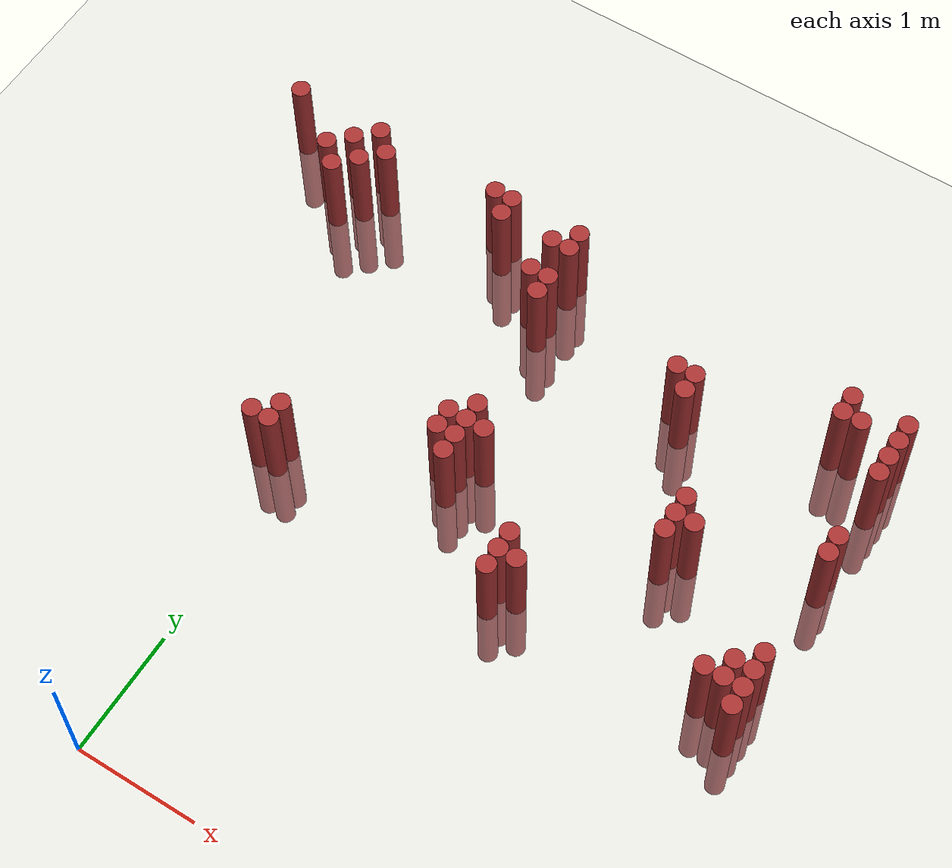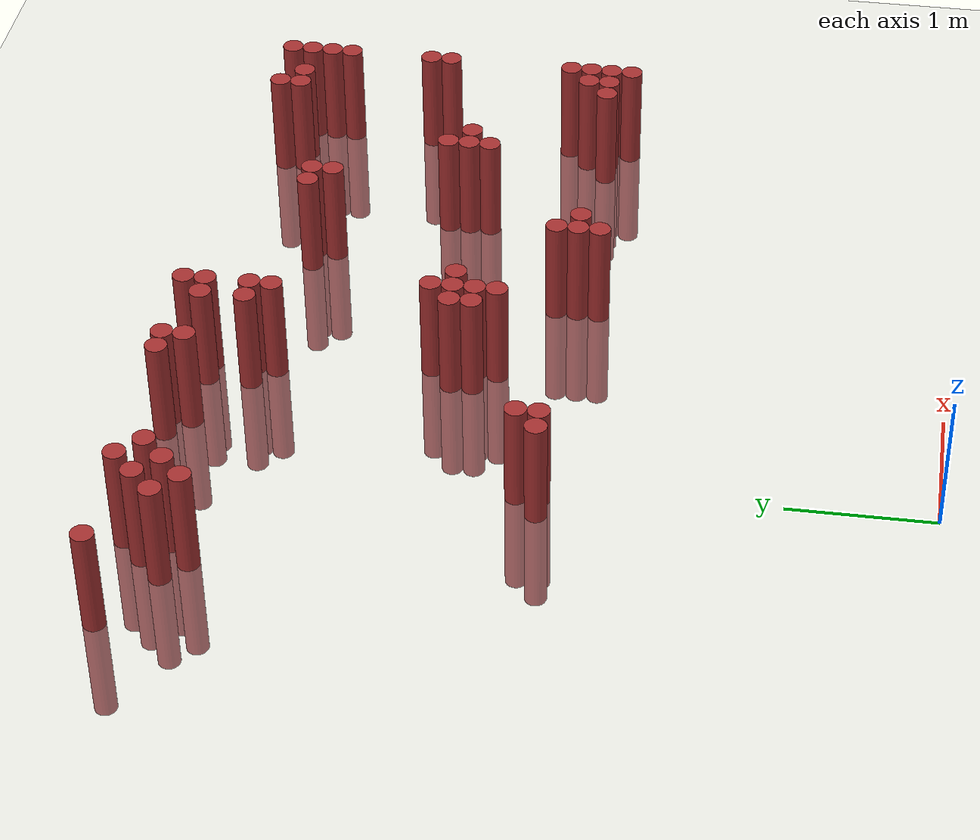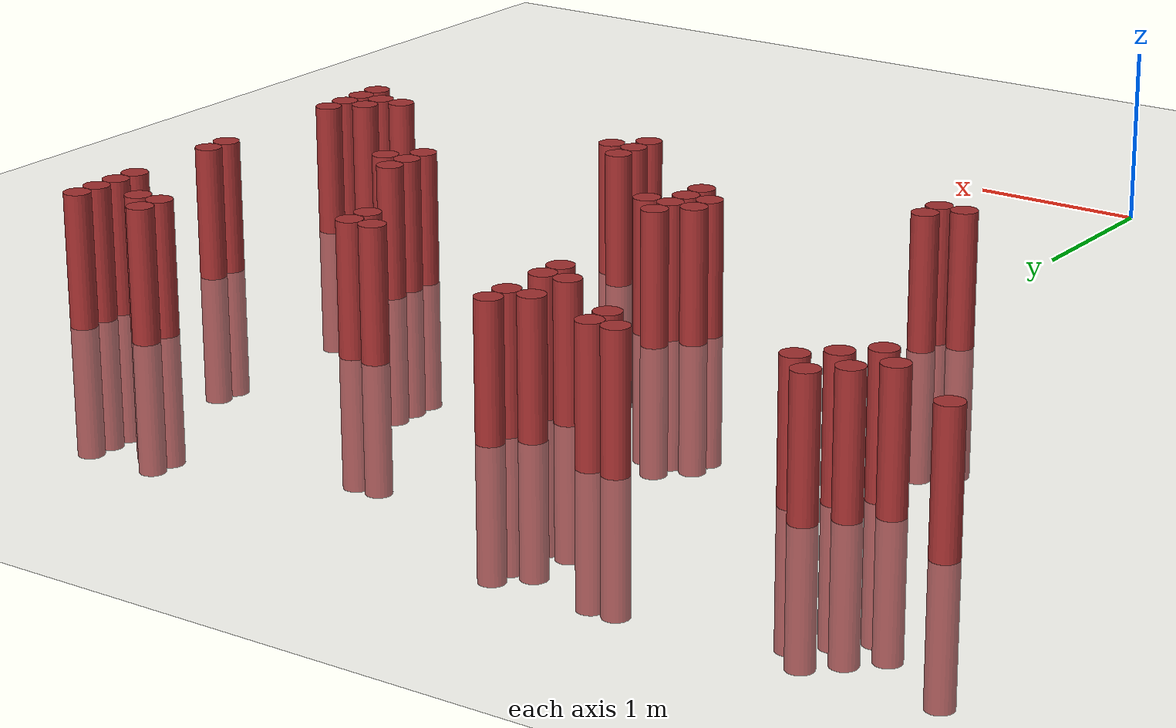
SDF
<sdf version="1.6">
 <world name="default">
  <model name="ground_plane">
   <static>1</static>
   <link name="link">
    <collision name="collision">
     <geometry><plane><normal>0 0 1</normal><size>100 100</size></plane></geometry>
     <surface><friction><ode><mu>100</mu><mu2>50</mu2></ode></friction></surface>
    </collision>
    <visual name="visual">
     <cast_shadows>0</cast_shadows>
     <geometry><plane><normal>0 0 1</normal><size>100 100</size></plane></geometry>
     <material>
      <script><uri>file://media/materials/scripts/gazebo.material</uri><name>Gazebo/Grey</name></script>
     </material>
    </visual>
   </link>
  </model>
  <model name="unit_cylinder_307">
   <static>1</static>
   <pose>-1.625000 5.125000 0.000000 0.000000 0.000000 0.000000</pose>
   <link name="link">
    <inertial>
     <mass>1</mass>
     <inertia><ixx>0.145833</ixx><ixy>0</ixy><ixz>0</ixz><iyy>0.145833</iyy><iyz>0</iyz><izz>0.125</izz></inertia>
    </inertial>
    <collision name="collision">
     <geometry><cylinder><radius>0.075000</radius><length>1.5</length></cylinder></geometry>
    </collision>
    <visual name="visual">
     <geometry><cylinder><radius>0.075000</radius><length>1.5</length></cylinder></geometry>
     <material>
      <ambient>0.648000 0.192000 0.192000 1</ambient>
      <diffuse>0.648000 0.192000 0.192000 1</diffuse>
     </material>
     <material>
      <script><name>Gazebo/Grey</name><uri>file://media/materials/scripts/gazebo.material</uri></script>
     </material>
    </visual>
   </link>
  </model>
  <model name="unit_cylinder_311">
   <static>1</static>
   <pose>-1.175000 4.825000 0.000000 0.000000 0.000000 0.000000</pose>
   <link name="link">
    <inertial>
     <mass>1</mass>
     <inertia><ixx>0.145833</ixx><ixy>0</ixy><ixz>0</ixz><iyy>0.145833</iyy><iyz>0</iyz><izz>0.125</izz></inertia>
    </inertial>
    <collision name="collision">
     <geometry><cylinder><radius>0.075000</radius><length>1.5</length></cylinder></geometry>
    </collision>
    <visual name="visual">
     <geometry><cylinder><radius>0.075000</radius><length>1.5</length></cylinder></geometry>
     <material>
      <ambient>0.648000 0.192000 0.192000 1</ambient>
      <diffuse>0.648000 0.192000 0.192000 1</diffuse>
     </material>
     <material>
      <script><name>Gazebo/Grey</name><uri>file://media/materials/scripts/gazebo.material</uri></script>
     </material>
    </visual>
   </link>
  </model>
  <model name="unit_cylinder_313">
   <static>1</static>
   <pose>-1.025000 4.675000 0.000000 0.000000 0.000000 0.000000</pose>
   <link name="link">
    <inertial>
     <mass>1</mass>
     <inertia><ixx>0.145833</ixx><ixy>0</ixy><ixz>0</ixz><iyy>0.145833</iyy><iyz>0</iyz><izz>0.125</izz></inertia>
    </inertial>
    <collision name="collision">
     <geometry><cylinder><radius>0.075000</radius><length>1.5</length></cylinder></geometry>
    </collision>
    <visual name="visual">
     <geometry><cylinder><radius>0.075000</radius><length>1.5</length></cylinder></geometry>
     <material>
      <ambient>0.648000 0.192000 0.192000 1</ambient>
      <diffuse>0.648000 0.192000 0.192000 1</diffuse>
     </material>
     <material>
      <script><name>Gazebo/Grey</name><uri>file://media/materials/scripts/gazebo.material</uri></script>
     </material>
    </visual>
   </link>
  </model>
  <model name="unit_cylinder_314">
   <static>1</static>
   <pose>-1.025000 4.975000 0.000000 0.000000 0.000000 0.000000</pose>
   <link name="link">
    <inertial>
     <mass>1</mass>
     <inertia><ixx>0.145833</ixx><ixy>0</ixy><ixz>0</ixz><iyy>0.145833</iyy><iyz>0</iyz><izz>0.125</izz></inertia>
    </inertial>
    <collision name="collision">
     <geometry><cylinder><radius>0.075000</radius><length>1.5</length></cylinder></geometry>
    </collision>
    <visual name="visual">
     <geometry><cylinder><radius>0.075000</radius><length>1.5</length></cylinder></geometry>
     <material>
      <ambient>0.648000 0.192000 0.192000 1</ambient>
      <diffuse>0.648000 0.192000 0.192000 1</diffuse>
     </material>
     <material>
      <script><name>Gazebo/Grey</name><uri>file://media/materials/scripts/gazebo.material</uri></script>
     </material>
    </visual>
   </link>
  </model>
  <model name="unit_cylinder_315">
   <static>1</static>
   <pose>-0.875000 4.825000 0.000000 0.000000 0.000000 0.000000</pose>
   <link name="link">
    <inertial>
     <mass>1</mass>
     <inertia><ixx>0.145833</ixx><ixy>0</ixy><ixz>0</ixz><iyy>0.145833</iyy><iyz>0</iyz><izz>0.125</izz></inertia>
    </inertial>
    <collision name="collision">
     <geometry><cylinder><radius>0.075000</radius><length>1.5</length></cylinder></geometry>
    </collision>
    <visual name="visual">
     <geometry><cylinder><radius>0.075000</radius><length>1.5</length></cylinder></geometry>
     <material>
      <ambient>0.648000 0.192000 0.192000 1</ambient>
      <diffuse>0.648000 0.192000 0.192000 1</diffuse>
     </material>
     <material>
      <script><name>Gazebo/Grey</name><uri>file://media/materials/scripts/gazebo.material</uri></script>
     </material>
    </visual>
   </link>
  </model>
  <model name="unit_cylinder_316">
   <static>1</static>
   <pose>-0.875000 5.125000 0.000000 0.000000 0.000000 0.000000</pose>
   <link name="link">
    <inertial>
     <mass>1</mass>
     <inertia><ixx>0.145833</ixx><ixy>0</ixy><ixz>0</ixz><iyy>0.145833</iyy><iyz>0</iyz><izz>0.125</izz></inertia>
    </inertial>
    <collision name="collision">
     <geometry><cylinder><radius>0.075000</radius><length>1.5</length></cylinder></geometry>
    </collision>
    <visual name="visual">
     <geometry><cylinder><radius>0.075000</radius><length>1.5</length></cylinder></geometry>
     <material>
      <ambient>0.648000 0.192000 0.192000 1</ambient>
      <diffuse>0.648000 0.192000 0.192000 1</diffuse>
     </material>
     <material>
      <script><name>Gazebo/Grey</name><uri>file://media/materials/scripts/gazebo.material</uri></script>
     </material>
    </visual>
   </link>
  </model>
  <model name="unit_cylinder_317">
   <static>1</static>
   <pose>-0.725000 4.975000 0.000000 0.000000 0.000000 0.000000</pose>
   <link name="link">
    <inertial>
     <mass>1</mass>
     <inertia><ixx>0.145833</ixx><ixy>0</ixy><ixz>0</ixz><iyy>0.145833</iyy><iyz>0</iyz><izz>0.125</izz></inertia>
    </inertial>
    <collision name="collision">
     <geometry><cylinder><radius>0.075000</radius><length>1.5</length></cylinder></geometry>
    </collision>
    <visual name="visual">
     <geometry><cylinder><radius>0.075000</radius><length>1.5</length></cylinder></geometry>
     <material>
      <ambient>0.648000 0.192000 0.192000 1</ambient>
      <diffuse>0.648000 0.192000 0.192000 1</diffuse>
     </material>
     <material>
      <script><name>Gazebo/Grey</name><uri>file://media/materials/scripts/gazebo.material</uri></script>
     </material>
    </visual>
   </link>
  </model>
  <model name="unit_cylinder_318">
   <static>1</static>
   <pose>-0.275000 2.575000 0.000000 0.000000 0.000000 0.000000</pose>
   <link name="link">
    <inertial>
     <mass>1</mass>
     <inertia><ixx>0.145833</ixx><ixy>0</ixy><ixz>0</ixz><iyy>0.145833</iyy><iyz>0</iyz><izz>0.125</izz></inertia>
    </inertial>
    <collision name="collision">
     <geometry><cylinder><radius>0.075000</radius><length>1.5</length></cylinder></geometry>
    </collision>
    <visual name="visual">
     <geometry><cylinder><radius>0.075000</radius><length>1.5</length></cylinder></geometry>
     <material>
      <ambient>0.648000 0.192000 0.192000 1</ambient>
      <diffuse>0.648000 0.192000 0.192000 1</diffuse>
     </material>
     <material>
      <script><name>Gazebo/Grey</name><uri>file://media/materials/scripts/gazebo.material</uri></script>
     </material>
    </visual>
   </link>
  </model>
  <model name="unit_cylinder_319">
   <static>1</static>
   <pose>-0.125000 2.575000 0.000000 0.000000 0.000000 0.000000</pose>
   <link name="link">
    <inertial>
     <mass>1</mass>
     <inertia><ixx>0.145833</ixx><ixy>0</ixy><ixz>0</ixz><iyy>0.145833</iyy><iyz>0</iyz><izz>0.125</izz></inertia>
    </inertial>
    <collision name="collision">
     <geometry><cylinder><radius>0.075000</radius><length>1.5</length></cylinder></geometry>
    </collision>
    <visual name="visual">
     <geometry><cylinder><radius>0.075000</radius><length>1.5</length></cylinder></geometry>
     <material>
      <ambient>0.648000 0.192000 0.192000 1</ambient>
      <diffuse>0.648000 0.192000 0.192000 1</diffuse>
     </material>
     <material>
      <script><name>Gazebo/Grey</name><uri>file://media/materials/scripts/gazebo.material</uri></script>
     </material>
    </visual>
   </link>
  </model>
  <model name="unit_cylinder_320">
   <static>1</static>
   <pose>-0.125000 2.725000 0.000000 0.000000 0.000000 0.000000</pose>
   <link name="link">
    <inertial>
     <mass>1</mass>
     <inertia><ixx>0.145833</ixx><ixy>0</ixy><ixz>0</ixz><iyy>0.145833</iyy><iyz>0</iyz><izz>0.125</izz></inertia>
    </inertial>
    <collision name="collision">
     <geometry><cylinder><radius>0.075000</radius><length>1.5</length></cylinder></geometry>
    </collision>
    <visual name="visual">
     <geometry><cylinder><radius>0.075000</radius><length>1.5</length></cylinder></geometry>
     <material>
      <ambient>0.648000 0.192000 0.192000 1</ambient>
      <diffuse>0.648000 0.192000 0.192000 1</diffuse>
     </material>
     <material>
      <script><name>Gazebo/Grey</name><uri>file://media/materials/scripts/gazebo.material</uri></script>
     </material>
    </visual>
   </link>
  </model>
  <model name="unit_cylinder_325">
   <static>1</static>
   <pose>0.175000 5.125000 0.000000 0.000000 0.000000 0.000000</pose>
   <link name="link">
    <inertial>
     <mass>1</mass>
     <inertia><ixx>0.145833</ixx><ixy>0</ixy><ixz>0</ixz><iyy>0.145833</iyy><iyz>0</iyz><izz>0.125</izz></inertia>
    </inertial>
    <collision name="collision">
     <geometry><cylinder><radius>0.075000</radius><length>1.5</length></cylinder></geometry>
    </collision>
    <visual name="visual">
     <geometry><cylinder><radius>0.075000</radius><length>1.5</length></cylinder></geometry>
     <material>
      <ambient>0.648000 0.192000 0.192000 1</ambient>
      <diffuse>0.648000 0.192000 0.192000 1</diffuse>
     </material>
     <material>
      <script><name>Gazebo/Grey</name><uri>file://media/materials/scripts/gazebo.material</uri></script>
     </material>
    </visual>
   </link>
  </model>
  <model name="unit_cylinder_331">
   <static>1</static>
   <pose>0.325000 4.975000 0.000000 0.000000 0.000000 0.000000</pose>
   <link name="link">
    <inertial>
     <mass>1</mass>
     <inertia><ixx>0.145833</ixx><ixy>0</ixy><ixz>0</ixz><iyy>0.145833</iyy><iyz>0</iyz><izz>0.125</izz></inertia>
    </inertial>
    <collision name="collision">
     <geometry><cylinder><radius>0.075000</radius><length>1.5</length></cylinder></geometry>
    </collision>
    <visual name="visual">
     <geometry><cylinder><radius>0.075000</radius><length>1.5</length></cylinder></geometry>
     <material>
      <ambient>0.648000 0.192000 0.192000 1</ambient>
      <diffuse>0.648000 0.192000 0.192000 1</diffuse>
     </material>
     <material>
      <script><name>Gazebo/Grey</name><uri>file://media/materials/scripts/gazebo.material</uri></script>
     </material>
    </visual>
   </link>
  </model>
  <model name="unit_cylinder_332">
   <static>1</static>
   <pose>0.325000 5.125000 0.000000 0.000000 0.000000 0.000000</pose>
   <link name="link">
    <inertial>
     <mass>1</mass>
     <inertia><ixx>0.145833</ixx><ixy>0</ixy><ixz>0</ixz><iyy>0.145833</iyy><iyz>0</iyz><izz>0.125</izz></inertia>
    </inertial>
    <collision name="collision">
     <geometry><cylinder><radius>0.075000</radius><length>1.5</length></cylinder></geometry>
    </collision>
    <visual name="visual">
     <geometry><cylinder><radius>0.075000</radius><length>1.5</length></cylinder></geometry>
     <material>
      <ambient>0.648000 0.192000 0.192000 1</ambient>
      <diffuse>0.648000 0.192000 0.192000 1</diffuse>
     </material>
     <material>
      <script><name>Gazebo/Grey</name><uri>file://media/materials/scripts/gazebo.material</uri></script>
     </material>
    </visual>
   </link>
  </model>
  <model name="unit_cylinder_340">
   <static>1</static>
   <pose>0.775000 4.675000 0.000000 0.000000 0.000000 0.000000</pose>
   <link name="link">
    <inertial>
     <mass>1</mass>
     <inertia><ixx>0.145833</ixx><ixy>0</ixy><ixz>0</ixz><iyy>0.145833</iyy><iyz>0</iyz><izz>0.125</izz></inertia>
    </inertial>
    <collision name="collision">
     <geometry><cylinder><radius>0.075000</radius><length>1.5</length></cylinder></geometry>
    </collision>
    <visual name="visual">
     <geometry><cylinder><radius>0.075000</radius><length>1.5</length></cylinder></geometry>
     <material>
      <ambient>0.648000 0.192000 0.192000 1</ambient>
      <diffuse>0.648000 0.192000 0.192000 1</diffuse>
     </material>
     <material>
      <script><name>Gazebo/Grey</name><uri>file://media/materials/scripts/gazebo.material</uri></script>
     </material>
    </visual>
   </link>
  </model>
  <model name="unit_cylinder_341">
   <static>1</static>
   <pose>0.775000 4.975000 0.000000 0.000000 0.000000 0.000000</pose>
   <link name="link">
    <inertial>
     <mass>1</mass>
     <inertia><ixx>0.145833</ixx><ixy>0</ixy><ixz>0</ixz><iyy>0.145833</iyy><iyz>0</iyz><izz>0.125</izz></inertia>
    </inertial>
    <collision name="collision">
     <geometry><cylinder><radius>0.075000</radius><length>1.5</length></cylinder></geometry>
    </collision>
    <visual name="visual">
     <geometry><cylinder><radius>0.075000</radius><length>1.5</length></cylinder></geometry>
     <material>
      <ambient>0.648000 0.192000 0.192000 1</ambient>
      <diffuse>0.648000 0.192000 0.192000 1</diffuse>
     </material>
     <material>
      <script><name>Gazebo/Grey</name><uri>file://media/materials/scripts/gazebo.material</uri></script>
     </material>
    </visual>
   </link>
  </model>
  <model name="unit_cylinder_342">
   <static>1</static>
   <pose>0.925000 3.175000 0.000000 0.000000 0.000000 0.000000</pose>
   <link name="link">
    <inertial>
     <mass>1</mass>
     <inertia><ixx>0.145833</ixx><ixy>0</ixy><ixz>0</ixz><iyy>0.145833</iyy><iyz>0</iyz><izz>0.125</izz></inertia>
    </inertial>
    <collision name="collision">
     <geometry><cylinder><radius>0.075000</radius><length>1.5</length></cylinder></geometry>
    </collision>
    <visual name="visual">
     <geometry><cylinder><radius>0.075000</radius><length>1.5</length></cylinder></geometry>
     <material>
      <ambient>0.648000 0.192000 0.192000 1</ambient>
      <diffuse>0.648000 0.192000 0.192000 1</diffuse>
     </material>
     <material>
      <script><name>Gazebo/Grey</name><uri>file://media/materials/scripts/gazebo.material</uri></script>
     </material>
    </visual>
   </link>
  </model>
  <model name="unit_cylinder_343">
   <static>1</static>
   <pose>0.925000 3.325000 0.000000 0.000000 0.000000 0.000000</pose>
   <link name="link">
    <inertial>
     <mass>1</mass>
     <inertia><ixx>0.145833</ixx><ixy>0</ixy><ixz>0</ixz><iyy>0.145833</iyy><iyz>0</iyz><izz>0.125</izz></inertia>
    </inertial>
    <collision name="collision">
     <geometry><cylinder><radius>0.075000</radius><length>1.5</length></cylinder></geometry>
    </collision>
    <visual name="visual">
     <geometry><cylinder><radius>0.075000</radius><length>1.5</length></cylinder></geometry>
     <material>
      <ambient>0.648000 0.192000 0.192000 1</ambient>
      <diffuse>0.648000 0.192000 0.192000 1</diffuse>
     </material>
     <material>
      <script><name>Gazebo/Grey</name><uri>file://media/materials/scripts/gazebo.material</uri></script>
     </material>
    </visual>
   </link>
  </model>
  <model name="unit_cylinder_344">
   <static>1</static>
   <pose>0.925000 4.525000 0.000000 0.000000 0.000000 0.000000</pose>
   <link name="link">
    <inertial>
     <mass>1</mass>
     <inertia><ixx>0.145833</ixx><ixy>0</ixy><ixz>0</ixz><iyy>0.145833</iyy><iyz>0</iyz><izz>0.125</izz></inertia>
    </inertial>
    <collision name="collision">
     <geometry><cylinder><radius>0.075000</radius><length>1.5</length></cylinder></geometry>
    </collision>
    <visual name="visual">
     <geometry><cylinder><radius>0.075000</radius><length>1.5</length></cylinder></geometry>
     <material>
      <ambient>0.648000 0.192000 0.192000 1</ambient>
      <diffuse>0.648000 0.192000 0.192000 1</diffuse>
     </material>
     <material>
      <script><name>Gazebo/Grey</name><uri>file://media/materials/scripts/gazebo.material</uri></script>
     </material>
    </visual>
   </link>
  </model>
  <model name="unit_cylinder_345">
   <static>1</static>
   <pose>0.925000 4.675000 0.000000 0.000000 0.000000 0.000000</pose>
   <link name="link">
    <inertial>
     <mass>1</mass>
     <inertia><ixx>0.145833</ixx><ixy>0</ixy><ixz>0</ixz><iyy>0.145833</iyy><iyz>0</iyz><izz>0.125</izz></inertia>
    </inertial>
    <collision name="collision">
     <geometry><cylinder><radius>0.075000</radius><length>1.5</length></cylinder></geometry>
    </collision>
    <visual name="visual">
     <geometry><cylinder><radius>0.075000</radius><length>1.5</length></cylinder></geometry>
     <material>
      <ambient>0.648000 0.192000 0.192000 1</ambient>
      <diffuse>0.648000 0.192000 0.192000 1</diffuse>
     </material>
     <material>
      <script><name>Gazebo/Grey</name><uri>file://media/materials/scripts/gazebo.material</uri></script>
     </material>
    </visual>
   </link>
  </model>
  <model name="unit_cylinder_346">
   <static>1</static>
   <pose>0.925000 4.975000 0.000000 0.000000 0.000000 0.000000</pose>
   <link name="link">
    <inertial>
     <mass>1</mass>
     <inertia><ixx>0.145833</ixx><ixy>0</ixy><ixz>0</ixz><iyy>0.145833</iyy><iyz>0</iyz><izz>0.125</izz></inertia>
    </inertial>
    <collision name="collision">
     <geometry><cylinder><radius>0.075000</radius><length>1.5</length></cylinder></geometry>
    </collision>
    <visual name="visual">
     <geometry><cylinder><radius>0.075000</radius><length>1.5</length></cylinder></geometry>
     <material>
      <ambient>0.648000 0.192000 0.192000 1</ambient>
      <diffuse>0.648000 0.192000 0.192000 1</diffuse>
     </material>
     <material>
      <script><name>Gazebo/Grey</name><uri>file://media/materials/scripts/gazebo.material</uri></script>
     </material>
    </visual>
   </link>
  </model>
  <model name="unit_cylinder_347">
   <static>1</static>
   <pose>0.925000 5.125000 0.000000 0.000000 0.000000 0.000000</pose>
   <link name="link">
    <inertial>
     <mass>1</mass>
     <inertia><ixx>0.145833</ixx><ixy>0</ixy><ixz>0</ixz><iyy>0.145833</iyy><iyz>0</iyz><izz>0.125</izz></inertia>
    </inertial>
    <collision name="collision">
     <geometry><cylinder><radius>0.075000</radius><length>1.5</length></cylinder></geometry>
    </collision>
    <visual name="visual">
     <geometry><cylinder><radius>0.075000</radius><length>1.5</length></cylinder></geometry>
     <material>
      <ambient>0.648000 0.192000 0.192000 1</ambient>
      <diffuse>0.648000 0.192000 0.192000 1</diffuse>
     </material>
     <material>
      <script><name>Gazebo/Grey</name><uri>file://media/materials/scripts/gazebo.material</uri></script>
     </material>
    </visual>
   </link>
  </model>
  <model name="unit_cylinder_348">
   <static>1</static>
   <pose>1.075000 3.025000 0.000000 0.000000 0.000000 0.000000</pose>
   <link name="link">
    <inertial>
     <mass>1</mass>
     <inertia><ixx>0.145833</ixx><ixy>0</ixy><ixz>0</ixz><iyy>0.145833</iyy><iyz>0</iyz><izz>0.125</izz></inertia>
    </inertial>
    <collision name="collision">
     <geometry><cylinder><radius>0.075000</radius><length>1.5</length></cylinder></geometry>
    </collision>
    <visual name="visual">
     <geometry><cylinder><radius>0.075000</radius><length>1.5</length></cylinder></geometry>
     <material>
      <ambient>0.648000 0.192000 0.192000 1</ambient>
      <diffuse>0.648000 0.192000 0.192000 1</diffuse>
     </material>
     <material>
      <script><name>Gazebo/Grey</name><uri>file://media/materials/scripts/gazebo.material</uri></script>
     </material>
    </visual>
   </link>
  </model>
  <model name="unit_cylinder_349">
   <static>1</static>
   <pose>1.075000 3.175000 0.000000 0.000000 0.000000 0.000000</pose>
   <link name="link">
    <inertial>
     <mass>1</mass>
     <inertia><ixx>0.145833</ixx><ixy>0</ixy><ixz>0</ixz><iyy>0.145833</iyy><iyz>0</iyz><izz>0.125</izz></inertia>
    </inertial>
    <collision name="collision">
     <geometry><cylinder><radius>0.075000</radius><length>1.5</length></cylinder></geometry>
    </collision>
    <visual name="visual">
     <geometry><cylinder><radius>0.075000</radius><length>1.5</length></cylinder></geometry>
     <material>
      <ambient>0.648000 0.192000 0.192000 1</ambient>
      <diffuse>0.648000 0.192000 0.192000 1</diffuse>
     </material>
     <material>
      <script><name>Gazebo/Grey</name><uri>file://media/materials/scripts/gazebo.material</uri></script>
     </material>
    </visual>
   </link>
  </model>
  <model name="unit_cylinder_350">
   <static>1</static>
   <pose>1.075000 3.325000 0.000000 0.000000 0.000000 0.000000</pose>
   <link name="link">
    <inertial>
     <mass>1</mass>
     <inertia><ixx>0.145833</ixx><ixy>0</ixy><ixz>0</ixz><iyy>0.145833</iyy><iyz>0</iyz><izz>0.125</izz></inertia>
    </inertial>
    <collision name="collision">
     <geometry><cylinder><radius>0.075000</radius><length>1.5</length></cylinder></geometry>
    </collision>
    <visual name="visual">
     <geometry><cylinder><radius>0.075000</radius><length>1.5</length></cylinder></geometry>
     <material>
      <ambient>0.648000 0.192000 0.192000 1</ambient>
      <diffuse>0.648000 0.192000 0.192000 1</diffuse>
     </material>
     <material>
      <script><name>Gazebo/Grey</name><uri>file://media/materials/scripts/gazebo.material</uri></script>
     </material>
    </visual>
   </link>
  </model>
  <model name="unit_cylinder_351">
   <static>1</static>
   <pose>1.075000 3.475000 0.000000 0.000000 0.000000 0.000000</pose>
   <link name="link">
    <inertial>
     <mass>1</mass>
     <inertia><ixx>0.145833</ixx><ixy>0</ixy><ixz>0</ixz><iyy>0.145833</iyy><iyz>0</iyz><izz>0.125</izz></inertia>
    </inertial>
    <collision name="collision">
     <geometry><cylinder><radius>0.075000</radius><length>1.5</length></cylinder></geometry>
    </collision>
    <visual name="visual">
     <geometry><cylinder><radius>0.075000</radius><length>1.5</length></cylinder></geometry>
     <material>
      <ambient>0.648000 0.192000 0.192000 1</ambient>
      <diffuse>0.648000 0.192000 0.192000 1</diffuse>
     </material>
     <material>
      <script><name>Gazebo/Grey</name><uri>file://media/materials/scripts/gazebo.material</uri></script>
     </material>
    </visual>
   </link>
  </model>
  <model name="unit_cylinder_352">
   <static>1</static>
   <pose>1.225000 3.325000 0.000000 0.000000 0.000000 0.000000</pose>
   <link name="link">
    <inertial>
     <mass>1</mass>
     <inertia><ixx>0.145833</ixx><ixy>0</ixy><ixz>0</ixz><iyy>0.145833</iyy><iyz>0</iyz><izz>0.125</izz></inertia>
    </inertial>
    <collision name="collision">
     <geometry><cylinder><radius>0.075000</radius><length>1.5</length></cylinder></geometry>
    </collision>
    <visual name="visual">
     <geometry><cylinder><radius>0.075000</radius><length>1.5</length></cylinder></geometry>
     <material>
      <ambient>0.648000 0.192000 0.192000 1</ambient>
      <diffuse>0.648000 0.192000 0.192000 1</diffuse>
     </material>
     <material>
      <script><name>Gazebo/Grey</name><uri>file://media/materials/scripts/gazebo.material</uri></script>
     </material>
    </visual>
   </link>
  </model>
  <model name="unit_cylinder_361">
   <static>1</static>
   <pose>1.825000 2.425000 0.000000 0.000000 0.000000 0.000000</pose>
   <link name="link">
    <inertial>
     <mass>1</mass>
     <inertia><ixx>0.145833</ixx><ixy>0</ixy><ixz>0</ixz><iyy>0.145833</iyy><iyz>0</iyz><izz>0.125</izz></inertia>
    </inertial>
    <collision name="collision">
     <geometry><cylinder><radius>0.075000</radius><length>1.5</length></cylinder></geometry>
    </collision>
    <visual name="visual">
     <geometry><cylinder><radius>0.075000</radius><length>1.5</length></cylinder></geometry>
     <material>
      <ambient>0.648000 0.192000 0.192000 1</ambient>
      <diffuse>0.648000 0.192000 0.192000 1</diffuse>
     </material>
     <material>
      <script><name>Gazebo/Grey</name><uri>file://media/materials/scripts/gazebo.material</uri></script>
     </material>
    </visual>
   </link>
  </model>
  <model name="unit_cylinder_362">
   <static>1</static>
   <pose>1.825000 2.575000 0.000000 0.000000 0.000000 0.000000</pose>
   <link name="link">
    <inertial>
     <mass>1</mass>
     <inertia><ixx>0.145833</ixx><ixy>0</ixy><ixz>0</ixz><iyy>0.145833</iyy><iyz>0</iyz><izz>0.125</izz></inertia>
    </inertial>
    <collision name="collision">
     <geometry><cylinder><radius>0.075000</radius><length>1.5</length></cylinder></geometry>
    </collision>
    <visual name="visual">
     <geometry><cylinder><radius>0.075000</radius><length>1.5</length></cylinder></geometry>
     <material>
      <ambient>0.648000 0.192000 0.192000 1</ambient>
      <diffuse>0.648000 0.192000 0.192000 1</diffuse>
     </material>
     <material>
      <script><name>Gazebo/Grey</name><uri>file://media/materials/scripts/gazebo.material</uri></script>
     </material>
    </visual>
   </link>
  </model>
  <model name="unit_cylinder_363">
   <static>1</static>
   <pose>1.825000 2.725000 0.000000 0.000000 0.000000 0.000000</pose>
   <link name="link">
    <inertial>
     <mass>1</mass>
     <inertia><ixx>0.145833</ixx><ixy>0</ixy><ixz>0</ixz><iyy>0.145833</iyy><iyz>0</iyz><izz>0.125</izz></inertia>
    </inertial>
    <collision name="collision">
     <geometry><cylinder><radius>0.075000</radius><length>1.5</length></cylinder></geometry>
    </collision>
    <visual name="visual">
     <geometry><cylinder><radius>0.075000</radius><length>1.5</length></cylinder></geometry>
     <material>
      <ambient>0.648000 0.192000 0.192000 1</ambient>
      <diffuse>0.648000 0.192000 0.192000 1</diffuse>
     </material>
     <material>
      <script><name>Gazebo/Grey</name><uri>file://media/materials/scripts/gazebo.material</uri></script>
     </material>
    </visual>
   </link>
  </model>
  <model name="unit_cylinder_367">
   <static>1</static>
   <pose>1.975000 2.575000 0.000000 0.000000 0.000000 0.000000</pose>
   <link name="link">
    <inertial>
     <mass>1</mass>
     <inertia><ixx>0.145833</ixx><ixy>0</ixy><ixz>0</ixz><iyy>0.145833</iyy><iyz>0</iyz><izz>0.125</izz></inertia>
    </inertial>
    <collision name="collision">
     <geometry><cylinder><radius>0.075000</radius><length>1.5</length></cylinder></geometry>
    </collision>
    <visual name="visual">
     <geometry><cylinder><radius>0.075000</radius><length>1.5</length></cylinder></geometry>
     <material>
      <ambient>0.648000 0.192000 0.192000 1</ambient>
      <diffuse>0.648000 0.192000 0.192000 1</diffuse>
     </material>
     <material>
      <script><name>Gazebo/Grey</name><uri>file://media/materials/scripts/gazebo.material</uri></script>
     </material>
    </visual>
   </link>
  </model>
  <model name="unit_cylinder_371">
   <static>1</static>
   <pose>2.125000 4.525000 0.000000 0.000000 0.000000 0.000000</pose>
   <link name="link">
    <inertial>
     <mass>1</mass>
     <inertia><ixx>0.145833</ixx><ixy>0</ixy><ixz>0</ixz><iyy>0.145833</iyy><iyz>0</iyz><izz>0.125</izz></inertia>
    </inertial>
    <collision name="collision">
     <geometry><cylinder><radius>0.075000</radius><length>1.5</length></cylinder></geometry>
    </collision>
    <visual name="visual">
     <geometry><cylinder><radius>0.075000</radius><length>1.5</length></cylinder></geometry>
     <material>
      <ambient>0.648000 0.192000 0.192000 1</ambient>
      <diffuse>0.648000 0.192000 0.192000 1</diffuse>
     </material>
     <material>
      <script><name>Gazebo/Grey</name><uri>file://media/materials/scripts/gazebo.material</uri></script>
     </material>
    </visual>
   </link>
  </model>
  <model name="unit_cylinder_374">
   <static>1</static>
   <pose>2.275000 4.375000 0.000000 0.000000 0.000000 0.000000</pose>
   <link name="link">
    <inertial>
     <mass>1</mass>
     <inertia><ixx>0.145833</ixx><ixy>0</ixy><ixz>0</ixz><iyy>0.145833</iyy><iyz>0</iyz><izz>0.125</izz></inertia>
    </inertial>
    <collision name="collision">
     <geometry><cylinder><radius>0.075000</radius><length>1.5</length></cylinder></geometry>
    </collision>
    <visual name="visual">
     <geometry><cylinder><radius>0.075000</radius><length>1.5</length></cylinder></geometry>
     <material>
      <ambient>0.648000 0.192000 0.192000 1</ambient>
      <diffuse>0.648000 0.192000 0.192000 1</diffuse>
     </material>
     <material>
      <script><name>Gazebo/Grey</name><uri>file://media/materials/scripts/gazebo.material</uri></script>
     </material>
    </visual>
   </link>
  </model>
  <model name="unit_cylinder_375">
   <static>1</static>
   <pose>2.275000 4.525000 0.000000 0.000000 0.000000 0.000000</pose>
   <link name="link">
    <inertial>
     <mass>1</mass>
     <inertia><ixx>0.145833</ixx><ixy>0</ixy><ixz>0</ixz><iyy>0.145833</iyy><iyz>0</iyz><izz>0.125</izz></inertia>
    </inertial>
    <collision name="collision">
     <geometry><cylinder><radius>0.075000</radius><length>1.5</length></cylinder></geometry>
    </collision>
    <visual name="visual">
     <geometry><cylinder><radius>0.075000</radius><length>1.5</length></cylinder></geometry>
     <material>
      <ambient>0.648000 0.192000 0.192000 1</ambient>
      <diffuse>0.648000 0.192000 0.192000 1</diffuse>
     </material>
     <material>
      <script><name>Gazebo/Grey</name><uri>file://media/materials/scripts/gazebo.material</uri></script>
     </material>
    </visual>
   </link>
  </model>
  <model name="unit_cylinder_377">
   <static>1</static>
   <pose>2.725000 3.325000 0.000000 0.000000 0.000000 0.000000</pose>
   <link name="link">
    <inertial>
     <mass>1</mass>
     <inertia><ixx>0.145833</ixx><ixy>0</ixy><ixz>0</ixz><iyy>0.145833</iyy><iyz>0</iyz><izz>0.125</izz></inertia>
    </inertial>
    <collision name="collision">
     <geometry><cylinder><radius>0.075000</radius><length>1.5</length></cylinder></geometry>
    </collision>
    <visual name="visual">
     <geometry><cylinder><radius>0.075000</radius><length>1.5</length></cylinder></geometry>
     <material>
      <ambient>0.648000 0.192000 0.192000 1</ambient>
      <diffuse>0.648000 0.192000 0.192000 1</diffuse>
     </material>
     <material>
      <script><name>Gazebo/Grey</name><uri>file://media/materials/scripts/gazebo.material</uri></script>
     </material>
    </visual>
   </link>
  </model>
  <model name="unit_cylinder_378">
   <static>1</static>
   <pose>2.725000 3.475000 0.000000 0.000000 0.000000 0.000000</pose>
   <link name="link">
    <inertial>
     <mass>1</mass>
     <inertia><ixx>0.145833</ixx><ixy>0</ixy><ixz>0</ixz><iyy>0.145833</iyy><iyz>0</iyz><izz>0.125</izz></inertia>
    </inertial>
    <collision name="collision">
     <geometry><cylinder><radius>0.075000</radius><length>1.5</length></cylinder></geometry>
    </collision>
    <visual name="visual">
     <geometry><cylinder><radius>0.075000</radius><length>1.5</length></cylinder></geometry>
     <material>
      <ambient>0.648000 0.192000 0.192000 1</ambient>
      <diffuse>0.648000 0.192000 0.192000 1</diffuse>
     </material>
     <material>
      <script><name>Gazebo/Grey</name><uri>file://media/materials/scripts/gazebo.material</uri></script>
     </material>
    </visual>
   </link>
  </model>
  <model name="unit_cylinder_379">
   <static>1</static>
   <pose>2.725000 3.625000 0.000000 0.000000 0.000000 0.000000</pose>
   <link name="link">
    <inertial>
     <mass>1</mass>
     <inertia><ixx>0.145833</ixx><ixy>0</ixy><ixz>0</ixz><iyy>0.145833</iyy><iyz>0</iyz><izz>0.125</izz></inertia>
    </inertial>
    <collision name="collision">
     <geometry><cylinder><radius>0.075000</radius><length>1.5</length></cylinder></geometry>
    </collision>
    <visual name="visual">
     <geometry><cylinder><radius>0.075000</radius><length>1.5</length></cylinder></geometry>
     <material>
      <ambient>0.648000 0.192000 0.192000 1</ambient>
      <diffuse>0.648000 0.192000 0.192000 1</diffuse>
     </material>
     <material>
      <script><name>Gazebo/Grey</name><uri>file://media/materials/scripts/gazebo.material</uri></script>
     </material>
    </visual>
   </link>
  </model>
  <model name="unit_cylinder_383">
   <static>1</static>
   <pose>2.875000 3.475000 0.000000 0.000000 0.000000 0.000000</pose>
   <link name="link">
    <inertial>
     <mass>1</mass>
     <inertia><ixx>0.145833</ixx><ixy>0</ixy><ixz>0</ixz><iyy>0.145833</iyy><iyz>0</iyz><izz>0.125</izz></inertia>
    </inertial>
    <collision name="collision">
     <geometry><cylinder><radius>0.075000</radius><length>1.5</length></cylinder></geometry>
    </collision>
    <visual name="visual">
     <geometry><cylinder><radius>0.075000</radius><length>1.5</length></cylinder></geometry>
     <material>
      <ambient>0.648000 0.192000 0.192000 1</ambient>
      <diffuse>0.648000 0.192000 0.192000 1</diffuse>
     </material>
     <material>
      <script><name>Gazebo/Grey</name><uri>file://media/materials/scripts/gazebo.material</uri></script>
     </material>
    </visual>
   </link>
  </model>
  <model name="unit_cylinder_392">
   <static>1</static>
   <pose>3.325000 4.825000 0.000000 0.000000 0.000000 0.000000</pose>
   <link name="link">
    <inertial>
     <mass>1</mass>
     <inertia><ixx>0.145833</ixx><ixy>0</ixy><ixz>0</ixz><iyy>0.145833</iyy><iyz>0</iyz><izz>0.125</izz></inertia>
    </inertial>
    <collision name="collision">
     <geometry><cylinder><radius>0.075000</radius><length>1.5</length></cylinder></geometry>
    </collision>
    <visual name="visual">
     <geometry><cylinder><radius>0.075000</radius><length>1.5</length></cylinder></geometry>
     <material>
      <ambient>0.648000 0.192000 0.192000 1</ambient>
      <diffuse>0.648000 0.192000 0.192000 1</diffuse>
     </material>
     <material>
      <script><name>Gazebo/Grey</name><uri>file://media/materials/scripts/gazebo.material</uri></script>
     </material>
    </visual>
   </link>
  </model>
  <model name="unit_cylinder_393">
   <static>1</static>
   <pose>3.325000 4.975000 0.000000 0.000000 0.000000 0.000000</pose>
   <link name="link">
    <inertial>
     <mass>1</mass>
     <inertia><ixx>0.145833</ixx><ixy>0</ixy><ixz>0</ixz><iyy>0.145833</iyy><iyz>0</iyz><izz>0.125</izz></inertia>
    </inertial>
    <collision name="collision">
     <geometry><cylinder><radius>0.075000</radius><length>1.5</length></cylinder></geometry>
    </collision>
    <visual name="visual">
     <geometry><cylinder><radius>0.075000</radius><length>1.5</length></cylinder></geometry>
     <material>
      <ambient>0.648000 0.192000 0.192000 1</ambient>
      <diffuse>0.648000 0.192000 0.192000 1</diffuse>
     </material>
     <material>
      <script><name>Gazebo/Grey</name><uri>file://media/materials/scripts/gazebo.material</uri></script>
     </material>
    </visual>
   </link>
  </model>
  <model name="unit_cylinder_399">
   <static>1</static>
   <pose>3.475000 2.575000 0.000000 0.000000 0.000000 0.000000</pose>
   <link name="link">
    <inertial>
     <mass>1</mass>
     <inertia><ixx>0.145833</ixx><ixy>0</ixy><ixz>0</ixz><iyy>0.145833</iyy><iyz>0</iyz><izz>0.125</izz></inertia>
    </inertial>
    <collision name="collision">
     <geometry><cylinder><radius>0.075000</radius><length>1.5</length></cylinder></geometry>
    </collision>
    <visual name="visual">
     <geometry><cylinder><radius>0.075000</radius><length>1.5</length></cylinder></geometry>
     <material>
      <ambient>0.648000 0.192000 0.192000 1</ambient>
      <diffuse>0.648000 0.192000 0.192000 1</diffuse>
     </material>
     <material>
      <script><name>Gazebo/Grey</name><uri>file://media/materials/scripts/gazebo.material</uri></script>
     </material>
    </visual>
   </link>
  </model>
  <model name="unit_cylinder_400">
   <static>1</static>
   <pose>3.475000 4.825000 0.000000 0.000000 0.000000 0.000000</pose>
   <link name="link">
    <inertial>
     <mass>1</mass>
     <inertia><ixx>0.145833</ixx><ixy>0</ixy><ixz>0</ixz><iyy>0.145833</iyy><iyz>0</iyz><izz>0.125</izz></inertia>
    </inertial>
    <collision name="collision">
     <geometry><cylinder><radius>0.075000</radius><length>1.5</length></cylinder></geometry>
    </collision>
    <visual name="visual">
     <geometry><cylinder><radius>0.075000</radius><length>1.5</length></cylinder></geometry>
     <material>
      <ambient>0.648000 0.192000 0.192000 1</ambient>
      <diffuse>0.648000 0.192000 0.192000 1</diffuse>
     </material>
     <material>
      <script><name>Gazebo/Grey</name><uri>file://media/materials/scripts/gazebo.material</uri></script>
     </material>
    </visual>
   </link>
  </model>
  <model name="unit_cylinder_406">
   <static>1</static>
   <pose>3.625000 2.575000 0.000000 0.000000 0.000000 0.000000</pose>
   <link name="link">
    <inertial>
     <mass>1</mass>
     <inertia><ixx>0.145833</ixx><ixy>0</ixy><ixz>0</ixz><iyy>0.145833</iyy><iyz>0</iyz><izz>0.125</izz></inertia>
    </inertial>
    <collision name="collision">
     <geometry><cylinder><radius>0.075000</radius><length>1.5</length></cylinder></geometry>
    </collision>
    <visual name="visual">
     <geometry><cylinder><radius>0.075000</radius><length>1.5</length></cylinder></geometry>
     <material>
      <ambient>0.648000 0.192000 0.192000 1</ambient>
      <diffuse>0.648000 0.192000 0.192000 1</diffuse>
     </material>
     <material>
      <script><name>Gazebo/Grey</name><uri>file://media/materials/scripts/gazebo.material</uri></script>
     </material>
    </visual>
   </link>
  </model>
  <model name="unit_cylinder_407">
   <static>1</static>
   <pose>3.625000 2.725000 0.000000 0.000000 0.000000 0.000000</pose>
   <link name="link">
    <inertial>
     <mass>1</mass>
     <inertia><ixx>0.145833</ixx><ixy>0</ixy><ixz>0</ixz><iyy>0.145833</iyy><iyz>0</iyz><izz>0.125</izz></inertia>
    </inertial>
    <collision name="collision">
     <geometry><cylinder><radius>0.075000</radius><length>1.5</length></cylinder></geometry>
    </collision>
    <visual name="visual">
     <geometry><cylinder><radius>0.075000</radius><length>1.5</length></cylinder></geometry>
     <material>
      <ambient>0.648000 0.192000 0.192000 1</ambient>
      <diffuse>0.648000 0.192000 0.192000 1</diffuse>
     </material>
     <material>
      <script><name>Gazebo/Grey</name><uri>file://media/materials/scripts/gazebo.material</uri></script>
     </material>
    </visual>
   </link>
  </model>
  <model name="unit_cylinder_417">
   <static>1</static>
   <pose>3.775000 2.425000 0.000000 0.000000 0.000000 0.000000</pose>
   <link name="link">
    <inertial>
     <mass>1</mass>
     <inertia><ixx>0.145833</ixx><ixy>0</ixy><ixz>0</ixz><iyy>0.145833</iyy><iyz>0</iyz><izz>0.125</izz></inertia>
    </inertial>
    <collision name="collision">
     <geometry><cylinder><radius>0.075000</radius><length>1.5</length></cylinder></geometry>
    </collision>
    <visual name="visual">
     <geometry><cylinder><radius>0.075000</radius><length>1.5</length></cylinder></geometry>
     <material>
      <ambient>0.648000 0.192000 0.192000 1</ambient>
      <diffuse>0.648000 0.192000 0.192000 1</diffuse>
     </material>
     <material>
      <script><name>Gazebo/Grey</name><uri>file://media/materials/scripts/gazebo.material</uri></script>
     </material>
    </visual>
   </link>
  </model>
  <model name="unit_cylinder_418">
   <static>1</static>
   <pose>3.775000 2.575000 0.000000 0.000000 0.000000 0.000000</pose>
   <link name="link">
    <inertial>
     <mass>1</mass>
     <inertia><ixx>0.145833</ixx><ixy>0</ixy><ixz>0</ixz><iyy>0.145833</iyy><iyz>0</iyz><izz>0.125</izz></inertia>
    </inertial>
    <collision name="collision">
     <geometry><cylinder><radius>0.075000</radius><length>1.5</length></cylinder></geometry>
    </collision>
    <visual name="visual">
     <geometry><cylinder><radius>0.075000</radius><length>1.5</length></cylinder></geometry>
     <material>
      <ambient>0.648000 0.192000 0.192000 1</ambient>
      <diffuse>0.648000 0.192000 0.192000 1</diffuse>
     </material>
     <material>
      <script><name>Gazebo/Grey</name><uri>file://media/materials/scripts/gazebo.material</uri></script>
     </material>
    </visual>
   </link>
  </model>
  <model name="unit_cylinder_419">
   <static>1</static>
   <pose>3.775000 2.725000 0.000000 0.000000 0.000000 0.000000</pose>
   <link name="link">
    <inertial>
     <mass>1</mass>
     <inertia><ixx>0.145833</ixx><ixy>0</ixy><ixz>0</ixz><iyy>0.145833</iyy><iyz>0</iyz><izz>0.125</izz></inertia>
    </inertial>
    <collision name="collision">
     <geometry><cylinder><radius>0.075000</radius><length>1.5</length></cylinder></geometry>
    </collision>
    <visual name="visual">
     <geometry><cylinder><radius>0.075000</radius><length>1.5</length></cylinder></geometry>
     <material>
      <ambient>0.648000 0.192000 0.192000 1</ambient>
      <diffuse>0.648000 0.192000 0.192000 1</diffuse>
     </material>
     <material>
      <script><name>Gazebo/Grey</name><uri>file://media/materials/scripts/gazebo.material</uri></script>
     </material>
    </visual>
   </link>
  </model>
  <model name="unit_cylinder_420">
   <static>1</static>
   <pose>3.775000 2.875000 0.000000 0.000000 0.000000 0.000000</pose>
   <link name="link">
    <inertial>
     <mass>1</mass>
     <inertia><ixx>0.145833</ixx><ixy>0</ixy><ixz>0</ixz><iyy>0.145833</iyy><iyz>0</iyz><izz>0.125</izz></inertia>
    </inertial>
    <collision name="collision">
     <geometry><cylinder><radius>0.075000</radius><length>1.5</length></cylinder></geometry>
    </collision>
    <visual name="visual">
     <geometry><cylinder><radius>0.075000</radius><length>1.5</length></cylinder></geometry>
     <material>
      <ambient>0.648000 0.192000 0.192000 1</ambient>
      <diffuse>0.648000 0.192000 0.192000 1</diffuse>
     </material>
     <material>
      <script><name>Gazebo/Grey</name><uri>file://media/materials/scripts/gazebo.material</uri></script>
     </material>
    </visual>
   </link>
  </model>
  <model name="unit_cylinder_421">
   <static>1</static>
   <pose>3.775000 3.775000 0.000000 0.000000 0.000000 0.000000</pose>
   <link name="link">
    <inertial>
     <mass>1</mass>
     <inertia><ixx>0.145833</ixx><ixy>0</ixy><ixz>0</ixz><iyy>0.145833</iyy><iyz>0</iyz><izz>0.125</izz></inertia>
    </inertial>
    <collision name="collision">
     <geometry><cylinder><radius>0.075000</radius><length>1.5</length></cylinder></geometry>
    </collision>
    <visual name="visual">
     <geometry><cylinder><radius>0.075000</radius><length>1.5</length></cylinder></geometry>
     <material>
      <ambient>0.648000 0.192000 0.192000 1</ambient>
      <diffuse>0.648000 0.192000 0.192000 1</diffuse>
     </material>
     <material>
      <script><name>Gazebo/Grey</name><uri>file://media/materials/scripts/gazebo.material</uri></script>
     </material>
    </visual>
   </link>
  </model>
  <model name="unit_cylinder_422">
   <static>1</static>
   <pose>3.775000 3.925000 0.000000 0.000000 0.000000 0.000000</pose>
   <link name="link">
    <inertial>
     <mass>1</mass>
     <inertia><ixx>0.145833</ixx><ixy>0</ixy><ixz>0</ixz><iyy>0.145833</iyy><iyz>0</iyz><izz>0.125</izz></inertia>
    </inertial>
    <collision name="collision">
     <geometry><cylinder><radius>0.075000</radius><length>1.5</length></cylinder></geometry>
    </collision>
    <visual name="visual">
     <geometry><cylinder><radius>0.075000</radius><length>1.5</length></cylinder></geometry>
     <material>
      <ambient>0.648000 0.192000 0.192000 1</ambient>
      <diffuse>0.648000 0.192000 0.192000 1</diffuse>
     </material>
     <material>
      <script><name>Gazebo/Grey</name><uri>file://media/materials/scripts/gazebo.material</uri></script>
     </material>
    </visual>
   </link>
  </model>
  <model name="unit_cylinder_423">
   <static>1</static>
   <pose>3.775000 4.525000 0.000000 0.000000 0.000000 0.000000</pose>
   <link name="link">
    <inertial>
     <mass>1</mass>
     <inertia><ixx>0.145833</ixx><ixy>0</ixy><ixz>0</ixz><iyy>0.145833</iyy><iyz>0</iyz><izz>0.125</izz></inertia>
    </inertial>
    <collision name="collision">
     <geometry><cylinder><radius>0.075000</radius><length>1.5</length></cylinder></geometry>
    </collision>
    <visual name="visual">
     <geometry><cylinder><radius>0.075000</radius><length>1.5</length></cylinder></geometry>
     <material>
      <ambient>0.648000 0.192000 0.192000 1</ambient>
      <diffuse>0.648000 0.192000 0.192000 1</diffuse>
     </material>
     <material>
      <script><name>Gazebo/Grey</name><uri>file://media/materials/scripts/gazebo.material</uri></script>
     </material>
    </visual>
   </link>
  </model>
  <model name="unit_cylinder_424">
   <static>1</static>
   <pose>3.775000 4.675000 0.000000 0.000000 0.000000 0.000000</pose>
   <link name="link">
    <inertial>
     <mass>1</mass>
     <inertia><ixx>0.145833</ixx><ixy>0</ixy><ixz>0</ixz><iyy>0.145833</iyy><iyz>0</iyz><izz>0.125</izz></inertia>
    </inertial>
    <collision name="collision">
     <geometry><cylinder><radius>0.075000</radius><length>1.5</length></cylinder></geometry>
    </collision>
    <visual name="visual">
     <geometry><cylinder><radius>0.075000</radius><length>1.5</length></cylinder></geometry>
     <material>
      <ambient>0.648000 0.192000 0.192000 1</ambient>
      <diffuse>0.648000 0.192000 0.192000 1</diffuse>
     </material>
     <material>
      <script><name>Gazebo/Grey</name><uri>file://media/materials/scripts/gazebo.material</uri></script>
     </material>
    </visual>
   </link>
  </model>
  <model name="unit_cylinder_425">
   <static>1</static>
   <pose>3.775000 4.825000 0.000000 0.000000 0.000000 0.000000</pose>
   <link name="link">
    <inertial>
     <mass>1</mass>
     <inertia><ixx>0.145833</ixx><ixy>0</ixy><ixz>0</ixz><iyy>0.145833</iyy><iyz>0</iyz><izz>0.125</izz></inertia>
    </inertial>
    <collision name="collision">
     <geometry><cylinder><radius>0.075000</radius><length>1.5</length></cylinder></geometry>
    </collision>
    <visual name="visual">
     <geometry><cylinder><radius>0.075000</radius><length>1.5</length></cylinder></geometry>
     <material>
      <ambient>0.648000 0.192000 0.192000 1</ambient>
      <diffuse>0.648000 0.192000 0.192000 1</diffuse>
     </material>
     <material>
      <script><name>Gazebo/Grey</name><uri>file://media/materials/scripts/gazebo.material</uri></script>
     </material>
    </visual>
   </link>
  </model>
  <model name="unit_cylinder_426">
   <static>1</static>
   <pose>3.775000 4.975000 0.000000 0.000000 0.000000 0.000000</pose>
   <link name="link">
    <inertial>
     <mass>1</mass>
     <inertia><ixx>0.145833</ixx><ixy>0</ixy><ixz>0</ixz><iyy>0.145833</iyy><iyz>0</iyz><izz>0.125</izz></inertia>
    </inertial>
    <collision name="collision">
     <geometry><cylinder><radius>0.075000</radius><length>1.5</length></cylinder></geometry>
    </collision>
    <visual name="visual">
     <geometry><cylinder><radius>0.075000</radius><length>1.5</length></cylinder></geometry>
     <material>
      <ambient>0.648000 0.192000 0.192000 1</ambient>
      <diffuse>0.648000 0.192000 0.192000 1</diffuse>
     </material>
     <material>
      <script><name>Gazebo/Grey</name><uri>file://media/materials/scripts/gazebo.material</uri></script>
     </material>
    </visual>
   </link>
  </model>
 </world>
</sdf>
